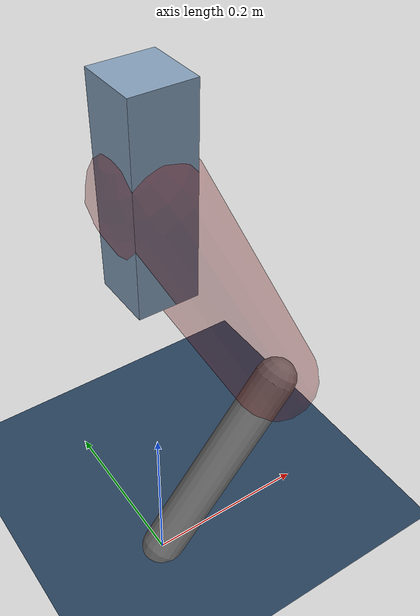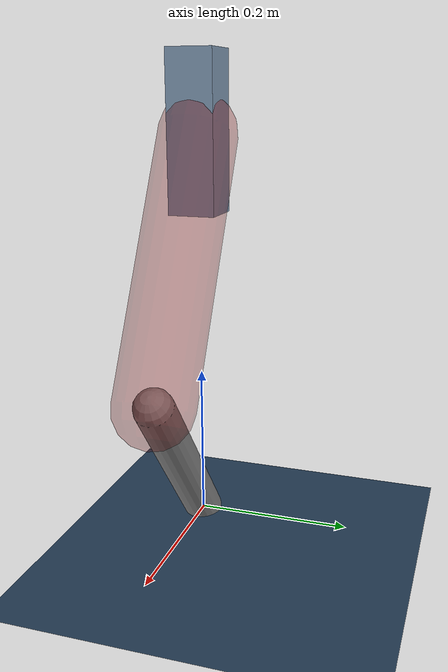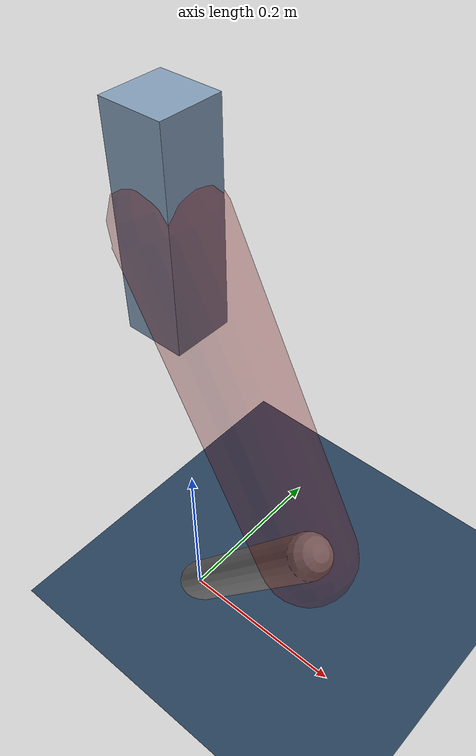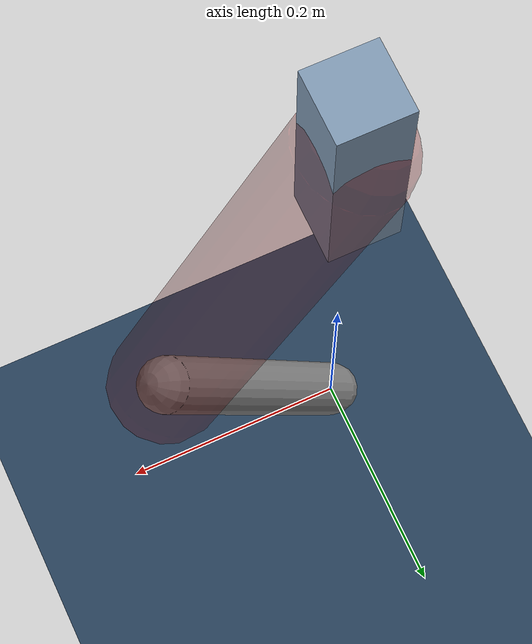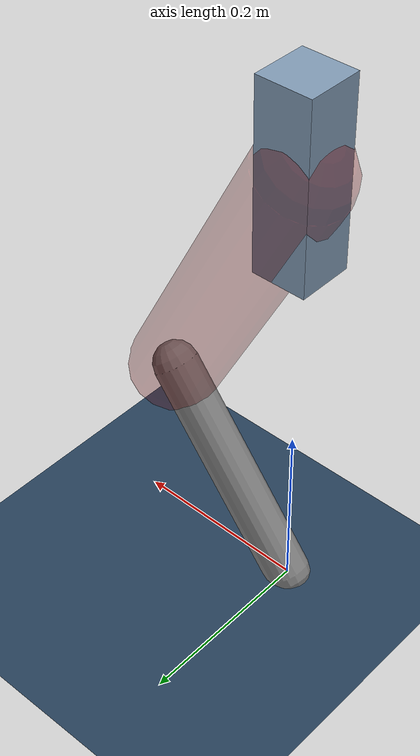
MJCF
<mujoco model="Hopper2D">
	<compiler inertiafromgeom="true" angle="radian" />
	<option timestep="0.001" integrator="implicit" cone="elliptic" solver="Newton" tolerance="1e-10" />

	<default>
		<geom contype="1" conaffinity="1" condim="3" friction="2 0.005 0.0001" solref="0.005 1" />
		<joint limited="true" damping="0.1" />
	</default>

	<asset>
		<texture name="skybox" type="skybox" builtin="gradient" rgb1=".4 .6 .8" rgb2="0 0 0" width="800" height="800" />
		<texture name="grid" type="2d" builtin="checker" rgb1=".1 .2 .3" rgb2=".2 .3 .4" width="300" height="300" mark="edge" markrgb=".2 .3 .4" />
		<material name="ground" texture="grid" texrepeat="1 1" texuniform="true" reflectance="0.1" />
		<material name="leg" rgba="0.5 0.6 0.7 1" />
	</asset>

	<worldbody>

		<geom name="floor" type="plane" size="5 5 0.25" material="ground" />

		<light directional="false" diffuse="0.8 0.8 0.8" specular="0.3 0.3 0.3" pos="0 0 2" dir="0 0 -1" />
		<light mode="targetbodycom" target="base" directional="false" diffuse="0.8 0.8 0.8" specular="0.3 0.3 0.3" pos="0 0 2" dir="0 0 -1" />

		<camera name="fixed" pos="0 -2 1" xyaxes="1 0 0 0 0 1" />
		<camera name="tracking" mode="trackcom" pos="0 -3 1" />

		<body name="root" pos="0 0 0.5123622273307408">
			<joint name="slide_x" type="slide" axis="1 0 0" range="-100 100" />
			<joint name="slide_z" type="slide" axis="0 0 1" range="0 10" />

			<body name="base" pos="0 0 0">
				<geom name="torso" type="box" size="0.03 0.03 0.1" mass="2.194" material="leg" />

				<body name="link1" pos="0 0 0" euler="0 1.0882044144952965 0">
					<joint type="hinge" axis="0 -1 0" pos="0 0 0" name="hinge1" limited="true" range="-3.14 3.14" stiffness="0" damping="0.1" />
					<geom name="thigh" type="capsule" fromto="0 0 0 0.3435639127446262 0 0" size="0.05" rgba="0.5 0 0 0.3" mass="1.1085789556849535" />

					<body name="link2" pos="0.3435639127446262 0 0" euler="0 1.1365125724596052 0">
						<joint type="hinge" axis="0 -1 0" pos="0 0 0" name="hinge2" limited="true" range="-3.14 3.14" stiffness="0" damping="0.1" />
						<geom name="shank" type="capsule" fromto="0 0 0 0.26210622888853913 0 0" size="0.025" mass="0.4524849831108313" />

					</body>
				</body>
			</body>
		</body>
	</worldbody>

	<actuator>
		<motor name="torque1" joint="hinge1" ctrlrange="-59.93091150990493 59.93091150990493" ctrllimited="true" gear="1" />
		<motor name="torque2" joint="hinge2" ctrlrange="-39.5238812980391 39.5238812980391" ctrllimited="true" gear="1" />
	</actuator>
</mujoco>
